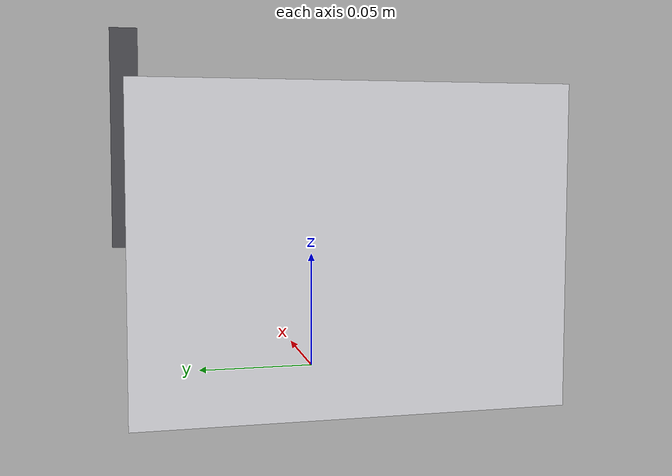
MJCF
<?xml version="1.0" encoding="utf-8"?>
<mujoco model="sulfur_analyzer">
  <compiler angle="radian" autolimits="true"/>
  <default>
    <default class="body"><geom contype="1" conaffinity="1"/></default>
  </default>
  <worldbody>
    <body name="base">
      <geom type="box" size="0.08 0.08 0.06" pos="0 0 0.06" rgba="0.85 0.85 0.87 1" class="body"/>
      <geom type="box" size="0.024 0.004 0.015" pos="-0.04 -0.07200000000000001 0.09" rgba="0.9 0.7 0.1 1" class="body"/>
      <body name="sample_door" pos="0 0.08 0.10">
        <joint name="sample_door_joint" type="hinge" axis="1 0 0" range="0 1.6" damping="0.3" frictionloss="0.3"/>
  <geom type="box" size="0.05 0.005 0.04" pos="0 0 0" rgba="0.3 0.3 0.32 1" class="body"/>
      </body>
    </body>
  </worldbody>
</mujoco>
